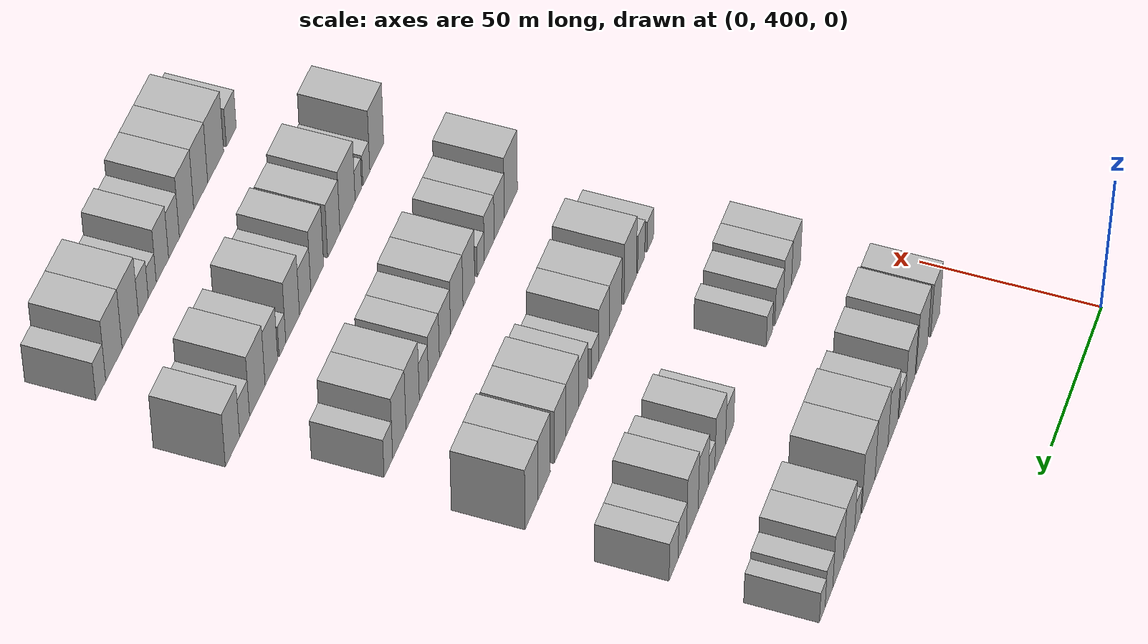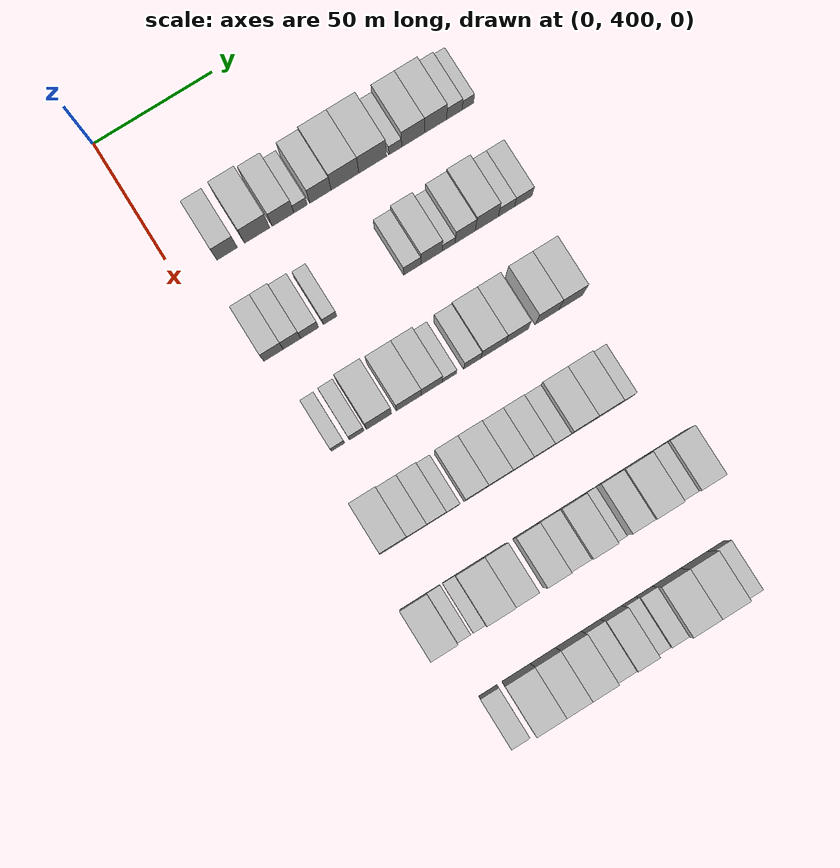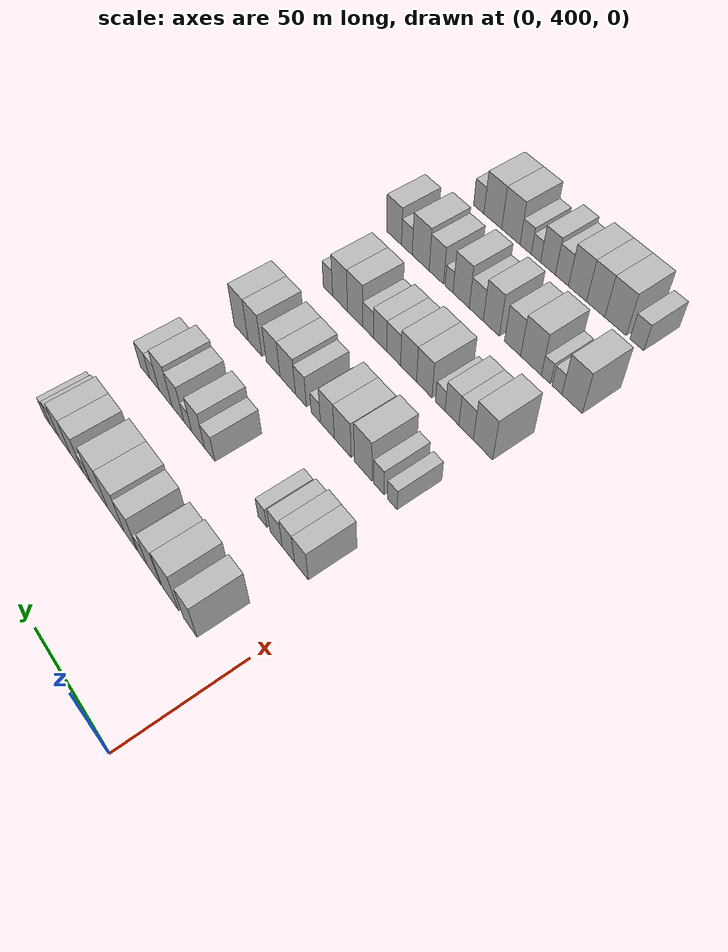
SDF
<sdf version="1.6">
 <world name="default">
  <model name="building_110">
   <static>1</static>
   <pose>50.0000 420.1055 0 0.000000 0.000000 0.000000</pose>
   <link name="link">
    <pose>0 0 10.50 0 0 0</pose>
    <collision name="collision"><geometry><box><size>20.0000 8.5276 21.0000</size></box></geometry></collision>
    <visual name="visual">
     <cast_shadows>0</cast_shadows>
     <geometry><box><size>20.0000 8.5276 21.0000</size></box></geometry>
     <material>
      <script>
       <uri>model://HANNAS_wall/materials/scripts</uri>
       <uri>model://HANNAS_wall/materials/textures</uri>
       <name>vrc/HANNAS_wall</name>
      </script>
     </material>
    </visual>
   </link>
  </model>
  <model name="building_111">
   <static>1</static>
   <pose>50.0000 432.6620 0 0.000000 0.000000 0.000000</pose>
   <link name="link">
    <pose>0 0 12.00 0 0 0</pose>
    <collision name="collision"><geometry><box><size>20.0000 10.5853 24.0000</size></box></geometry></collision>
    <visual name="visual">
     <cast_shadows>0</cast_shadows>
     <geometry><box><size>20.0000 10.5853 24.0000</size></box></geometry>
     <material>
      <script>
       <uri>model://HANNAS_wall/materials/scripts</uri>
       <uri>model://HANNAS_wall/materials/textures</uri>
       <name>vrc/HANNAS_wall</name>
      </script>
     </material>
    </visual>
   </link>
  </model>
  <model name="building_112">
   <static>1</static>
   <pose>50.0000 443.5451 0 0.000000 0.000000 0.000000</pose>
   <link name="link">
    <pose>0 0 10.50 0 0 0</pose>
    <collision name="collision"><geometry><box><size>20.0000 9.1810 21.0000</size></box></geometry></collision>
    <visual name="visual">
     <cast_shadows>0</cast_shadows>
     <geometry><box><size>20.0000 9.1810 21.0000</size></box></geometry>
     <material>
      <script>
       <uri>model://HANNAS_wall/materials/scripts</uri>
       <uri>model://HANNAS_wall/materials/textures</uri>
       <name>vrc/HANNAS_wall</name>
      </script>
     </material>
    </visual>
   </link>
  </model>
  <model name="building_113">
   <static>1</static>
   <pose>50.0000 450.9675 0 0.000000 0.000000 0.000000</pose>
   <link name="link">
    <pose>0 0 6.00 0 0 0</pose>
    <collision name="collision"><geometry><box><size>20.0000 5.6637 12.0000</size></box></geometry></collision>
    <visual name="visual">
     <cast_shadows>0</cast_shadows>
     <geometry><box><size>20.0000 5.6637 12.0000</size></box></geometry>
     <material>
      <script>
       <uri>model://HANNAS_wall/materials/scripts</uri>
       <uri>model://HANNAS_wall/materials/textures</uri>
       <name>vrc/HANNAS_wall</name>
      </script>
     </material>
    </visual>
   </link>
  </model>
  <model name="building_114">
   <static>1</static>
   <pose>50.0000 459.3117 0 0.000000 0.000000 0.000000</pose>
   <link name="link">
    <pose>0 0 10.50 0 0 0</pose>
    <collision name="collision"><geometry><box><size>20.0000 9.0249 21.0000</size></box></geometry></collision>
    <visual name="visual">
     <cast_shadows>0</cast_shadows>
     <geometry><box><size>20.0000 9.0249 21.0000</size></box></geometry>
     <material>
      <script>
       <uri>model://HANNAS_wall/materials/scripts</uri>
       <uri>model://HANNAS_wall/materials/textures</uri>
       <name>vrc/HANNAS_wall</name>
      </script>
     </material>
    </visual>
   </link>
  </model>
  <model name="building_115">
   <static>1</static>
   <pose>50.0000 469.6719 0 0.000000 0.000000 0.000000</pose>
   <link name="link">
    <pose>0 0 12.00 0 0 0</pose>
    <collision name="collision"><geometry><box><size>20.0000 11.6955 24.0000</size></box></geometry></collision>
    <visual name="visual">
     <cast_shadows>0</cast_shadows>
     <geometry><box><size>20.0000 11.6955 24.0000</size></box></geometry>
     <material>
      <script>
       <uri>model://HANNAS_wall/materials/scripts</uri>
       <uri>model://HANNAS_wall/materials/textures</uri>
       <name>vrc/HANNAS_wall</name>
      </script>
     </material>
    </visual>
   </link>
  </model>
  <model name="building_116">
   <static>1</static>
   <pose>50.0000 481.3776 0 0.000000 0.000000 0.000000</pose>
   <link name="link">
    <pose>0 0 12.00 0 0 0</pose>
    <collision name="collision"><geometry><box><size>20.0000 11.7159 24.0000</size></box></geometry></collision>
    <visual name="visual">
     <cast_shadows>0</cast_shadows>
     <geometry><box><size>20.0000 11.7159 24.0000</size></box></geometry>
     <material>
      <script>
       <uri>model://HANNAS_wall/materials/scripts</uri>
       <uri>model://HANNAS_wall/materials/textures</uri>
       <name>vrc/HANNAS_wall</name>
      </script>
     </material>
    </visual>
   </link>
  </model>
  <model name="building_117">
   <static>1</static>
   <pose>50.0000 490.9326 0 0.000000 0.000000 0.000000</pose>
   <link name="link">
    <pose>0 0 6.00 0 0 0</pose>
    <collision name="collision"><geometry><box><size>20.0000 5.3941 12.0000</size></box></geometry></collision>
    <visual name="visual">
     <cast_shadows>0</cast_shadows>
     <geometry><box><size>20.0000 5.3941 12.0000</size></box></geometry>
     <material>
      <script>
       <uri>model://HANNAS_wall/materials/scripts</uri>
       <uri>model://HANNAS_wall/materials/textures</uri>
       <name>vrc/HANNAS_wall</name>
      </script>
     </material>
    </visual>
   </link>
  </model>
  <model name="building_118">
   <static>1</static>
   <pose>50.0000 498.4471 0 0.000000 0.000000 0.000000</pose>
   <link name="link">
    <pose>0 0 10.50 0 0 0</pose>
    <collision name="collision"><geometry><box><size>20.0000 9.6350 21.0000</size></box></geometry></collision>
    <visual name="visual">
     <cast_shadows>0</cast_shadows>
     <geometry><box><size>20.0000 9.6350 21.0000</size></box></geometry>
     <material>
      <script>
       <uri>model://HANNAS_wall/materials/scripts</uri>
       <uri>model://HANNAS_wall/materials/textures</uri>
       <name>vrc/HANNAS_wall</name>
      </script>
     </material>
    </visual>
   </link>
  </model>
  <model name="building_119">
   <static>1</static>
   <pose>50.0000 507.9901 0 0.000000 0.000000 0.000000</pose>
   <link name="link">
    <pose>0 0 10.50 0 0 0</pose>
    <collision name="collision"><geometry><box><size>20.0000 9.4509 21.0000</size></box></geometry></collision>
    <visual name="visual">
     <cast_shadows>0</cast_shadows>
     <geometry><box><size>20.0000 9.4509 21.0000</size></box></geometry>
     <material>
      <script>
       <uri>model://HANNAS_wall/materials/scripts</uri>
       <uri>model://HANNAS_wall/materials/textures</uri>
       <name>vrc/HANNAS_wall</name>
      </script>
     </material>
    </visual>
   </link>
  </model>
  <model name="building_120">
   <static>1</static>
   <pose>50.0000 516.0234 0 0.000000 0.000000 0.000000</pose>
   <link name="link">
    <pose>0 0 7.50 0 0 0</pose>
    <collision name="collision"><geometry><box><size>20.0000 6.6158 15.0000</size></box></geometry></collision>
    <visual name="visual">
     <cast_shadows>0</cast_shadows>
     <geometry><box><size>20.0000 6.6158 15.0000</size></box></geometry>
     <material>
      <script>
       <uri>model://HANNAS_wall/materials/scripts</uri>
       <uri>model://HANNAS_wall/materials/textures</uri>
       <name>vrc/HANNAS_wall</name>
      </script>
     </material>
    </visual>
   </link>
  </model>
  <model name="building_121">
   <static>1</static>
   <pose>50.0000 521.7863 0 0.000000 0.000000 0.000000</pose>
   <link name="link">
    <pose>0 0 6.00 0 0 0</pose>
    <collision name="collision"><geometry><box><size>20.0000 4.9099 12.0000</size></box></geometry></collision>
    <visual name="visual">
     <cast_shadows>0</cast_shadows>
     <geometry><box><size>20.0000 4.9099 12.0000</size></box></geometry>
     <material>
      <script>
       <uri>model://HANNAS_wall/materials/scripts</uri>
       <uri>model://HANNAS_wall/materials/textures</uri>
       <name>vrc/HANNAS_wall</name>
      </script>
     </material>
    </visual>
   </link>
  </model>
  <model name="building_249">
   <static>1</static>
   <pose>90.0000 415.0874 0 0.000000 0.000000 0.000000</pose>
   <link name="link">
    <pose>0 0 9.00 0 0 0</pose>
    <collision name="collision"><geometry><box><size>20.0000 8.1011 18.0000</size></box></geometry></collision>
    <visual name="visual">
     <cast_shadows>0</cast_shadows>
     <geometry><box><size>20.0000 8.1011 18.0000</size></box></geometry>
     <material>
      <script>
       <uri>model://HANNAS_wall/materials/scripts</uri>
       <uri>model://HANNAS_wall/materials/textures</uri>
       <name>vrc/HANNAS_wall</name>
      </script>
     </material>
    </visual>
   </link>
  </model>
  <model name="building_250">
   <static>1</static>
   <pose>90.0000 422.7804 0 0.000000 0.000000 0.000000</pose>
   <link name="link">
    <pose>0 0 9.00 0 0 0</pose>
    <collision name="collision"><geometry><box><size>20.0000 7.2850 18.0000</size></box></geometry></collision>
    <visual name="visual">
     <cast_shadows>0</cast_shadows>
     <geometry><box><size>20.0000 7.2850 18.0000</size></box></geometry>
     <material>
      <script>
       <uri>model://HANNAS_wall/materials/scripts</uri>
       <uri>model://HANNAS_wall/materials/textures</uri>
       <name>vrc/HANNAS_wall</name>
      </script>
     </material>
    </visual>
   </link>
  </model>
  <model name="building_251">
   <static>1</static>
   <pose>90.0000 430.1629 0 0.000000 0.000000 0.000000</pose>
   <link name="link">
    <pose>0 0 7.50 0 0 0</pose>
    <collision name="collision"><geometry><box><size>20.0000 7.4800 15.0000</size></box></geometry></collision>
    <visual name="visual">
     <cast_shadows>0</cast_shadows>
     <geometry><box><size>20.0000 7.4800 15.0000</size></box></geometry>
     <material>
      <script>
       <uri>model://HANNAS_wall/materials/scripts</uri>
       <uri>model://HANNAS_wall/materials/textures</uri>
       <name>vrc/HANNAS_wall</name>
      </script>
     </material>
    </visual>
   </link>
  </model>
  <model name="building_252">
   <static>1</static>
   <pose>90.0000 438.6901 0 0.000000 0.000000 0.000000</pose>
   <link name="link">
    <pose>0 0 6.00 0 0 0</pose>
    <collision name="collision"><geometry><box><size>20.0000 5.5744 12.0000</size></box></geometry></collision>
    <visual name="visual">
     <cast_shadows>0</cast_shadows>
     <geometry><box><size>20.0000 5.5744 12.0000</size></box></geometry>
     <material>
      <script>
       <uri>model://HANNAS_wall/materials/scripts</uri>
       <uri>model://HANNAS_wall/materials/textures</uri>
       <name>vrc/HANNAS_wall</name>
      </script>
     </material>
    </visual>
   </link>
  </model>
  <model name="building_253">
   <static>1</static>
   <pose>90.0000 473.1619 0 0.000000 0.000000 0.000000</pose>
   <link name="link">
    <pose>0 0 7.50 0 0 0</pose>
    <collision name="collision"><geometry><box><size>20.0000 7.1231 15.0000</size></box></geometry></collision>
    <visual name="visual">
     <cast_shadows>0</cast_shadows>
     <geometry><box><size>20.0000 7.1231 15.0000</size></box></geometry>
     <material>
      <script>
       <uri>model://HANNAS_wall/materials/scripts</uri>
       <uri>model://HANNAS_wall/materials/textures</uri>
       <name>vrc/HANNAS_wall</name>
      </script>
     </material>
    </visual>
   </link>
  </model>
  <model name="building_254">
   <static>1</static>
   <pose>90.0000 481.2542 0 0.000000 0.000000 0.000000</pose>
   <link name="link">
    <pose>0 0 10.50 0 0 0</pose>
    <collision name="collision"><geometry><box><size>20.0000 9.0615 21.0000</size></box></geometry></collision>
    <visual name="visual">
     <cast_shadows>0</cast_shadows>
     <geometry><box><size>20.0000 9.0615 21.0000</size></box></geometry>
     <material>
      <script>
       <uri>model://HANNAS_wall/materials/scripts</uri>
       <uri>model://HANNAS_wall/materials/textures</uri>
       <name>vrc/HANNAS_wall</name>
      </script>
     </material>
    </visual>
   </link>
  </model>
  <model name="building_255">
   <static>1</static>
   <pose>90.0000 488.5045 0 0.000000 0.000000 0.000000</pose>
   <link name="link">
    <pose>0 0 6.00 0 0 0</pose>
    <collision name="collision"><geometry><box><size>20.0000 5.4392 12.0000</size></box></geometry></collision>
    <visual name="visual">
     <cast_shadows>0</cast_shadows>
     <geometry><box><size>20.0000 5.4392 12.0000</size></box></geometry>
     <material>
      <script>
       <uri>model://HANNAS_wall/materials/scripts</uri>
       <uri>model://HANNAS_wall/materials/textures</uri>
       <name>vrc/HANNAS_wall</name>
      </script>
     </material>
    </visual>
   </link>
  </model>
  <model name="building_256">
   <static>1</static>
   <pose>90.0000 495.5028 0 0.000000 0.000000 0.000000</pose>
   <link name="link">
    <pose>0 0 10.50 0 0 0</pose>
    <collision name="collision"><geometry><box><size>20.0000 8.5574 21.0000</size></box></geometry></collision>
    <visual name="visual">
     <cast_shadows>0</cast_shadows>
     <geometry><box><size>20.0000 8.5574 21.0000</size></box></geometry>
     <material>
      <script>
       <uri>model://HANNAS_wall/materials/scripts</uri>
       <uri>model://HANNAS_wall/materials/textures</uri>
       <name>vrc/HANNAS_wall</name>
      </script>
     </material>
    </visual>
   </link>
  </model>
  <model name="building_257">
   <static>1</static>
   <pose>90.0000 504.6371 0 0.000000 0.000000 0.000000</pose>
   <link name="link">
    <pose>0 0 12.00 0 0 0</pose>
    <collision name="collision"><geometry><box><size>20.0000 9.7112 24.0000</size></box></geometry></collision>
    <visual name="visual">
     <cast_shadows>0</cast_shadows>
     <geometry><box><size>20.0000 9.7112 24.0000</size></box></geometry>
     <material>
      <script>
       <uri>model://HANNAS_wall/materials/scripts</uri>
       <uri>model://HANNAS_wall/materials/textures</uri>
       <name>vrc/HANNAS_wall</name>
      </script>
     </material>
    </visual>
   </link>
  </model>
  <model name="building_258">
   <static>1</static>
   <pose>90.0000 512.9459 0 0.000000 0.000000 0.000000</pose>
   <link name="link">
    <pose>0 0 7.50 0 0 0</pose>
    <collision name="collision"><geometry><box><size>20.0000 6.9064 15.0000</size></box></geometry></collision>
    <visual name="visual">
     <cast_shadows>0</cast_shadows>
     <geometry><box><size>20.0000 6.9064 15.0000</size></box></geometry>
     <material>
      <script>
       <uri>model://HANNAS_wall/materials/scripts</uri>
       <uri>model://HANNAS_wall/materials/textures</uri>
       <name>vrc/HANNAS_wall</name>
      </script>
     </material>
    </visual>
   </link>
  </model>
  <model name="building_259">
   <static>1</static>
   <pose>90.0000 520.1080 0 0.000000 0.000000 0.000000</pose>
   <link name="link">
    <pose>0 0 7.50 0 0 0</pose>
    <collision name="collision"><geometry><box><size>20.0000 7.4178 15.0000</size></box></geometry></collision>
    <visual name="visual">
     <cast_shadows>0</cast_shadows>
     <geometry><box><size>20.0000 7.4178 15.0000</size></box></geometry>
     <material>
      <script>
       <uri>model://HANNAS_wall/materials/scripts</uri>
       <uri>model://HANNAS_wall/materials/textures</uri>
       <name>vrc/HANNAS_wall</name>
      </script>
     </material>
    </visual>
   </link>
  </model>
  <model name="building_390">
   <static>1</static>
   <pose>130.0000 417.3419 0 0.000000 0.000000 0.000000</pose>
   <link name="link">
    <pose>0 0 6.00 0 0 0</pose>
    <collision name="collision"><geometry><box><size>20.0000 5.5188 12.0000</size></box></geometry></collision>
    <visual name="visual">
     <cast_shadows>0</cast_shadows>
     <geometry><box><size>20.0000 5.5188 12.0000</size></box></geometry>
     <material>
      <script>
       <uri>model://HANNAS_wall/materials/scripts</uri>
       <uri>model://HANNAS_wall/materials/textures</uri>
       <name>vrc/HANNAS_wall</name>
      </script>
     </material>
    </visual>
   </link>
  </model>
  <model name="building_391">
   <static>1</static>
   <pose>130.0000 425.1284 0 0.000000 0.000000 0.000000</pose>
   <link name="link">
    <pose>0 0 7.50 0 0 0</pose>
    <collision name="collision"><geometry><box><size>20.0000 6.0542 15.0000</size></box></geometry></collision>
    <visual name="visual">
     <cast_shadows>0</cast_shadows>
     <geometry><box><size>20.0000 6.0542 15.0000</size></box></geometry>
     <material>
      <script>
       <uri>model://HANNAS_wall/materials/scripts</uri>
       <uri>model://HANNAS_wall/materials/textures</uri>
       <name>vrc/HANNAS_wall</name>
      </script>
     </material>
    </visual>
   </link>
  </model>
  <model name="building_392">
   <static>1</static>
   <pose>130.0000 434.3742 0 0.000000 0.000000 0.000000</pose>
   <link name="link">
    <pose>0 0 12.00 0 0 0</pose>
    <collision name="collision"><geometry><box><size>20.0000 10.4375 24.0000</size></box></geometry></collision>
    <visual name="visual">
     <cast_shadows>0</cast_shadows>
     <geometry><box><size>20.0000 10.4375 24.0000</size></box></geometry>
     <material>
      <script>
       <uri>model://HANNAS_wall/materials/scripts</uri>
       <uri>model://HANNAS_wall/materials/textures</uri>
       <name>vrc/HANNAS_wall</name>
      </script>
     </material>
    </visual>
   </link>
  </model>
  <model name="building_393">
   <static>1</static>
   <pose>130.0000 446.7995 0 0.000000 0.000000 0.000000</pose>
   <link name="link">
    <pose>0 0 10.50 0 0 0</pose>
    <collision name="collision"><geometry><box><size>20.0000 10.4129 21.0000</size></box></geometry></collision>
    <visual name="visual">
     <cast_shadows>0</cast_shadows>
     <geometry><box><size>20.0000 10.4129 21.0000</size></box></geometry>
     <material>
      <script>
       <uri>model://HANNAS_wall/materials/scripts</uri>
       <uri>model://HANNAS_wall/materials/textures</uri>
       <name>vrc/HANNAS_wall</name>
      </script>
     </material>
    </visual>
   </link>
  </model>
  <model name="building_394">
   <static>1</static>
   <pose>130.0000 456.3729 0 0.000000 0.000000 0.000000</pose>
   <link name="link">
    <pose>0 0 10.50 0 0 0</pose>
    <collision name="collision"><geometry><box><size>20.0000 8.7340 21.0000</size></box></geometry></collision>
    <visual name="visual">
     <cast_shadows>0</cast_shadows>
     <geometry><box><size>20.0000 8.7340 21.0000</size></box></geometry>
     <material>
      <script>
       <uri>model://HANNAS_wall/materials/scripts</uri>
       <uri>model://HANNAS_wall/materials/textures</uri>
       <name>vrc/HANNAS_wall</name>
      </script>
     </material>
    </visual>
   </link>
  </model>
  <model name="building_395">
   <static>1</static>
   <pose>130.0000 463.7271 0 0.000000 0.000000 0.000000</pose>
   <link name="link">
    <pose>0 0 6.00 0 0 0</pose>
    <collision name="collision"><geometry><box><size>20.0000 5.9744 12.0000</size></box></geometry></collision>
    <visual name="visual">
     <cast_shadows>0</cast_shadows>
     <geometry><box><size>20.0000 5.9744 12.0000</size></box></geometry>
     <material>
      <script>
       <uri>model://HANNAS_wall/materials/scripts</uri>
       <uri>model://HANNAS_wall/materials/textures</uri>
       <name>vrc/HANNAS_wall</name>
      </script>
     </material>
    </visual>
   </link>
  </model>
  <model name="building_396">
   <static>1</static>
   <pose>130.0000 473.3313 0 0.000000 0.000000 0.000000</pose>
   <link name="link">
    <pose>0 0 9.00 0 0 0</pose>
    <collision name="collision"><geometry><box><size>20.0000 7.2339 18.0000</size></box></geometry></collision>
    <visual name="visual">
     <cast_shadows>0</cast_shadows>
     <geometry><box><size>20.0000 7.2339 18.0000</size></box></geometry>
     <material>
      <script>
       <uri>model://HANNAS_wall/materials/scripts</uri>
       <uri>model://HANNAS_wall/materials/textures</uri>
       <name>vrc/HANNAS_wall</name>
      </script>
     </material>
    </visual>
   </link>
  </model>
  <model name="building_397">
   <static>1</static>
   <pose>130.0000 482.1320 0 0.000000 0.000000 0.000000</pose>
   <link name="link">
    <pose>0 0 10.50 0 0 0</pose>
    <collision name="collision"><geometry><box><size>20.0000 10.3675 21.0000</size></box></geometry></collision>
    <visual name="visual">
     <cast_shadows>0</cast_shadows>
     <geometry><box><size>20.0000 10.3675 21.0000</size></box></geometry>
     <material>
      <script>
       <uri>model://HANNAS_wall/materials/scripts</uri>
       <uri>model://HANNAS_wall/materials/textures</uri>
       <name>vrc/HANNAS_wall</name>
      </script>
     </material>
    </visual>
   </link>
  </model>
  <model name="building_398">
   <static>1</static>
   <pose>130.0000 492.0915 0 0.000000 0.000000 0.000000</pose>
   <link name="link">
    <pose>0 0 10.50 0 0 0</pose>
    <collision name="collision"><geometry><box><size>20.0000 9.5514 21.0000</size></box></geometry></collision>
    <visual name="visual">
     <cast_shadows>0</cast_shadows>
     <geometry><box><size>20.0000 9.5514 21.0000</size></box></geometry>
     <material>
      <script>
       <uri>model://HANNAS_wall/materials/scripts</uri>
       <uri>model://HANNAS_wall/materials/textures</uri>
       <name>vrc/HANNAS_wall</name>
      </script>
     </material>
    </visual>
   </link>
  </model>
  <model name="building_399">
   <static>1</static>
   <pose>130.0000 504.7904 0 0.000000 0.000000 0.000000</pose>
   <link name="link">
    <pose>0 0 12.00 0 0 0</pose>
    <collision name="collision"><geometry><box><size>20.0000 9.8464 24.0000</size></box></geometry></collision>
    <visual name="visual">
     <cast_shadows>0</cast_shadows>
     <geometry><box><size>20.0000 9.8464 24.0000</size></box></geometry>
     <material>
      <script>
       <uri>model://HANNAS_wall/materials/scripts</uri>
       <uri>model://HANNAS_wall/materials/textures</uri>
       <name>vrc/HANNAS_wall</name>
      </script>
     </material>
    </visual>
   </link>
  </model>
  <model name="building_400">
   <static>1</static>
   <pose>130.0000 514.7852 0 0.000000 0.000000 0.000000</pose>
   <link name="link">
    <pose>0 0 12.00 0 0 0</pose>
    <collision name="collision"><geometry><box><size>20.0000 10.1431 24.0000</size></box></geometry></collision>
    <visual name="visual">
     <cast_shadows>0</cast_shadows>
     <geometry><box><size>20.0000 10.1431 24.0000</size></box></geometry>
     <material>
      <script>
       <uri>model://HANNAS_wall/materials/scripts</uri>
       <uri>model://HANNAS_wall/materials/textures</uri>
       <name>vrc/HANNAS_wall</name>
      </script>
     </material>
    </visual>
   </link>
  </model>
  <model name="building_531">
   <static>1</static>
   <pose>170.0000 415.6485 0 0.000000 0.000000 0.000000</pose>
   <link name="link">
    <pose>0 0 12.00 0 0 0</pose>
    <collision name="collision"><geometry><box><size>20.0000 10.7504 24.0000</size></box></geometry></collision>
    <visual name="visual">
     <cast_shadows>0</cast_shadows>
     <geometry><box><size>20.0000 10.7504 24.0000</size></box></geometry>
     <material>
      <script>
       <uri>model://HANNAS_wall/materials/scripts</uri>
       <uri>model://HANNAS_wall/materials/textures</uri>
       <name>vrc/HANNAS_wall</name>
      </script>
     </material>
    </visual>
   </link>
  </model>
  <model name="building_532">
   <static>1</static>
   <pose>170.0000 425.1238 0 0.000000 0.000000 0.000000</pose>
   <link name="link">
    <pose>0 0 9.00 0 0 0</pose>
    <collision name="collision"><geometry><box><size>20.0000 8.2002 18.0000</size></box></geometry></collision>
    <visual name="visual">
     <cast_shadows>0</cast_shadows>
     <geometry><box><size>20.0000 8.2002 18.0000</size></box></geometry>
     <material>
      <script>
       <uri>model://HANNAS_wall/materials/scripts</uri>
       <uri>model://HANNAS_wall/materials/textures</uri>
       <name>vrc/HANNAS_wall</name>
      </script>
     </material>
    </visual>
   </link>
  </model>
  <model name="building_533">
   <static>1</static>
   <pose>170.0000 433.2291 0 0.000000 0.000000 0.000000</pose>
   <link name="link">
    <pose>0 0 9.00 0 0 0</pose>
    <collision name="collision"><geometry><box><size>20.0000 8.0103 18.0000</size></box></geometry></collision>
    <visual name="visual">
     <cast_shadows>0</cast_shadows>
     <geometry><box><size>20.0000 8.0103 18.0000</size></box></geometry>
     <material>
      <script>
       <uri>model://HANNAS_wall/materials/scripts</uri>
       <uri>model://HANNAS_wall/materials/textures</uri>
       <name>vrc/HANNAS_wall</name>
      </script>
     </material>
    </visual>
   </link>
  </model>
  <model name="building_534">
   <static>1</static>
   <pose>170.0000 440.0709 0 0.000000 0.000000 0.000000</pose>
   <link name="link">
    <pose>0 0 6.00 0 0 0</pose>
    <collision name="collision"><geometry><box><size>20.0000 5.6733 12.0000</size></box></geometry></collision>
    <visual name="visual">
     <cast_shadows>0</cast_shadows>
     <geometry><box><size>20.0000 5.6733 12.0000</size></box></geometry>
     <material>
      <script>
       <uri>model://HANNAS_wall/materials/scripts</uri>
       <uri>model://HANNAS_wall/materials/textures</uri>
       <name>vrc/HANNAS_wall</name>
      </script>
     </material>
    </visual>
   </link>
  </model>
  <model name="building_535">
   <static>1</static>
   <pose>170.0000 449.5840 0 0.000000 0.000000 0.000000</pose>
   <link name="link">
    <pose>0 0 10.50 0 0 0</pose>
    <collision name="collision"><geometry><box><size>20.0000 9.3530 21.0000</size></box></geometry></collision>
    <visual name="visual">
     <cast_shadows>0</cast_shadows>
     <geometry><box><size>20.0000 9.3530 21.0000</size></box></geometry>
     <material>
      <script>
       <uri>model://HANNAS_wall/materials/scripts</uri>
       <uri>model://HANNAS_wall/materials/textures</uri>
       <name>vrc/HANNAS_wall</name>
      </script>
     </material>
    </visual>
   </link>
  </model>
  <model name="building_536">
   <static>1</static>
   <pose>170.0000 459.1764 0 0.000000 0.000000 0.000000</pose>
   <link name="link">
    <pose>0 0 10.50 0 0 0</pose>
    <collision name="collision"><geometry><box><size>20.0000 9.8319 21.0000</size></box></geometry></collision>
    <visual name="visual">
     <cast_shadows>0</cast_shadows>
     <geometry><box><size>20.0000 9.8319 21.0000</size></box></geometry>
     <material>
      <script>
       <uri>model://HANNAS_wall/materials/scripts</uri>
       <uri>model://HANNAS_wall/materials/textures</uri>
       <name>vrc/HANNAS_wall</name>
      </script>
     </material>
    </visual>
   </link>
  </model>
  <model name="building_537">
   <static>1</static>
   <pose>170.0000 468.4742 0 0.000000 0.000000 0.000000</pose>
   <link name="link">
    <pose>0 0 9.00 0 0 0</pose>
    <collision name="collision"><geometry><box><size>20.0000 8.7637 18.0000</size></box></geometry></collision>
    <visual name="visual">
     <cast_shadows>0</cast_shadows>
     <geometry><box><size>20.0000 8.7637 18.0000</size></box></geometry>
     <material>
      <script>
       <uri>model://HANNAS_wall/materials/scripts</uri>
       <uri>model://HANNAS_wall/materials/textures</uri>
       <name>vrc/HANNAS_wall</name>
      </script>
     </material>
    </visual>
   </link>
  </model>
  <model name="building_538">
   <static>1</static>
   <pose>170.0000 477.1355 0 0.000000 0.000000 0.000000</pose>
   <link name="link">
    <pose>0 0 9.00 0 0 0</pose>
    <collision name="collision"><geometry><box><size>20.0000 8.5589 18.0000</size></box></geometry></collision>
    <visual name="visual">
     <cast_shadows>0</cast_shadows>
     <geometry><box><size>20.0000 8.5589 18.0000</size></box></geometry>
     <material>
      <script>
       <uri>model://HANNAS_wall/materials/scripts</uri>
       <uri>model://HANNAS_wall/materials/textures</uri>
       <name>vrc/HANNAS_wall</name>
      </script>
     </material>
    </visual>
   </link>
  </model>
  <model name="building_539">
   <static>1</static>
   <pose>170.0000 484.9039 0 0.000000 0.000000 0.000000</pose>
   <link name="link">
    <pose>0 0 7.50 0 0 0</pose>
    <collision name="collision"><geometry><box><size>20.0000 6.9778 15.0000</size></box></geometry></collision>
    <visual name="visual">
     <cast_shadows>0</cast_shadows>
     <geometry><box><size>20.0000 6.9778 15.0000</size></box></geometry>
     <material>
      <script>
       <uri>model://HANNAS_wall/materials/scripts</uri>
       <uri>model://HANNAS_wall/materials/textures</uri>
       <name>vrc/HANNAS_wall</name>
      </script>
     </material>
    </visual>
   </link>
  </model>
  <model name="building_540">
   <static>1</static>
   <pose>170.0000 493.5011 0 0.000000 0.000000 0.000000</pose>
   <link name="link">
    <pose>0 0 12.00 0 0 0</pose>
    <collision name="collision"><geometry><box><size>20.0000 10.2166 24.0000</size></box></geometry></collision>
    <visual name="visual">
     <cast_shadows>0</cast_shadows>
     <geometry><box><size>20.0000 10.2166 24.0000</size></box></geometry>
     <material>
      <script>
       <uri>model://HANNAS_wall/materials/scripts</uri>
       <uri>model://HANNAS_wall/materials/textures</uri>
       <name>vrc/HANNAS_wall</name>
      </script>
     </material>
    </visual>
   </link>
  </model>
  <model name="building_541">
   <static>1</static>
   <pose>170.0000 503.7042 0 0.000000 0.000000 0.000000</pose>
   <link name="link">
    <pose>0 0 12.00 0 0 0</pose>
    <collision name="collision"><geometry><box><size>20.0000 10.1897 24.0000</size></box></geometry></collision>
    <visual name="visual">
     <cast_shadows>0</cast_shadows>
     <geometry><box><size>20.0000 10.1897 24.0000</size></box></geometry>
     <material>
      <script>
       <uri>model://HANNAS_wall/materials/scripts</uri>
       <uri>model://HANNAS_wall/materials/textures</uri>
       <name>vrc/HANNAS_wall</name>
      </script>
     </material>
    </visual>
   </link>
  </model>
  <model name="building_542">
   <static>1</static>
   <pose>170.0000 512.0456 0 0.000000 0.000000 0.000000</pose>
   <link name="link">
    <pose>0 0 7.50 0 0 0</pose>
    <collision name="collision"><geometry><box><size>20.0000 6.4930 15.0000</size></box></geometry></collision>
    <visual name="visual">
     <cast_shadows>0</cast_shadows>
     <geometry><box><size>20.0000 6.4930 15.0000</size></box></geometry>
     <material>
      <script>
       <uri>model://HANNAS_wall/materials/scripts</uri>
       <uri>model://HANNAS_wall/materials/textures</uri>
       <name>vrc/HANNAS_wall</name>
      </script>
     </material>
    </visual>
   </link>
  </model>
  <model name="building_669">
   <static>1</static>
   <pose>210.0000 411.2536 0 0.000000 0.000000 0.000000</pose>
   <link name="link">
    <pose>0 0 12.00 0 0 0</pose>
    <collision name="collision"><geometry><box><size>20.0000 10.9149 24.0000</size></box></geometry></collision>
    <visual name="visual">
     <cast_shadows>0</cast_shadows>
     <geometry><box><size>20.0000 10.9149 24.0000</size></box></geometry>
     <material>
      <script>
       <uri>model://HANNAS_wall/materials/scripts</uri>
       <uri>model://HANNAS_wall/materials/textures</uri>
       <name>vrc/HANNAS_wall</name>
      </script>
     </material>
    </visual>
   </link>
  </model>
  <model name="building_670">
   <static>1</static>
   <pose>210.0000 419.4178 0 0.000000 0.000000 0.000000</pose>
   <link name="link">
    <pose>0 0 6.00 0 0 0</pose>
    <collision name="collision"><geometry><box><size>20.0000 5.4133 12.0000</size></box></geometry></collision>
    <visual name="visual">
     <cast_shadows>0</cast_shadows>
     <geometry><box><size>20.0000 5.4133 12.0000</size></box></geometry>
     <material>
      <script>
       <uri>model://HANNAS_wall/materials/scripts</uri>
       <uri>model://HANNAS_wall/materials/textures</uri>
       <name>vrc/HANNAS_wall</name>
      </script>
     </material>
    </visual>
   </link>
  </model>
  <model name="building_671">
   <static>1</static>
   <pose>210.0000 425.6525 0 0.000000 0.000000 0.000000</pose>
   <link name="link">
    <pose>0 0 6.00 0 0 0</pose>
    <collision name="collision"><geometry><box><size>20.0000 5.0561 12.0000</size></box></geometry></collision>
    <visual name="visual">
     <cast_shadows>0</cast_shadows>
     <geometry><box><size>20.0000 5.0561 12.0000</size></box></geometry>
     <material>
      <script>
       <uri>model://HANNAS_wall/materials/scripts</uri>
       <uri>model://HANNAS_wall/materials/textures</uri>
       <name>vrc/HANNAS_wall</name>
      </script>
     </material>
    </visual>
   </link>
  </model>
  <model name="building_672">
   <static>1</static>
   <pose>210.0000 434.0646 0 0.000000 0.000000 0.000000</pose>
   <link name="link">
    <pose>0 0 12.00 0 0 0</pose>
    <collision name="collision"><geometry><box><size>20.0000 11.7682 24.0000</size></box></geometry></collision>
    <visual name="visual">
     <cast_shadows>0</cast_shadows>
     <geometry><box><size>20.0000 11.7682 24.0000</size></box></geometry>
     <material>
      <script>
       <uri>model://HANNAS_wall/materials/scripts</uri>
       <uri>model://HANNAS_wall/materials/textures</uri>
       <name>vrc/HANNAS_wall</name>
      </script>
     </material>
    </visual>
   </link>
  </model>
  <model name="building_673">
   <static>1</static>
   <pose>210.0000 444.6850 0 0.000000 0.000000 0.000000</pose>
   <link name="link">
    <pose>0 0 10.50 0 0 0</pose>
    <collision name="collision"><geometry><box><size>20.0000 9.4727 21.0000</size></box></geometry></collision>
    <visual name="visual">
     <cast_shadows>0</cast_shadows>
     <geometry><box><size>20.0000 9.4727 21.0000</size></box></geometry>
     <material>
      <script>
       <uri>model://HANNAS_wall/materials/scripts</uri>
       <uri>model://HANNAS_wall/materials/textures</uri>
       <name>vrc/HANNAS_wall</name>
      </script>
     </material>
    </visual>
   </link>
  </model>
  <model name="building_674">
   <static>1</static>
   <pose>210.0000 457.2834 0 0.000000 0.000000 0.000000</pose>
   <link name="link">
    <pose>0 0 12.00 0 0 0</pose>
    <collision name="collision"><geometry><box><size>20.0000 9.7240 24.0000</size></box></geometry></collision>
    <visual name="visual">
     <cast_shadows>0</cast_shadows>
     <geometry><box><size>20.0000 9.7240 24.0000</size></box></geometry>
     <material>
      <script>
       <uri>model://HANNAS_wall/materials/scripts</uri>
       <uri>model://HANNAS_wall/materials/textures</uri>
       <name>vrc/HANNAS_wall</name>
      </script>
     </material>
    </visual>
   </link>
  </model>
  <model name="building_675">
   <static>1</static>
   <pose>210.0000 466.4382 0 0.000000 0.000000 0.000000</pose>
   <link name="link">
    <pose>0 0 9.00 0 0 0</pose>
    <collision name="collision"><geometry><box><size>20.0000 8.5855 18.0000</size></box></geometry></collision>
    <visual name="visual">
     <cast_shadows>0</cast_shadows>
     <geometry><box><size>20.0000 8.5855 18.0000</size></box></geometry>
     <material>
      <script>
       <uri>model://HANNAS_wall/materials/scripts</uri>
       <uri>model://HANNAS_wall/materials/textures</uri>
       <name>vrc/HANNAS_wall</name>
      </script>
     </material>
    </visual>
   </link>
  </model>
  <model name="building_676">
   <static>1</static>
   <pose>210.0000 475.8455 0 0.000000 0.000000 0.000000</pose>
   <link name="link">
    <pose>0 0 12.00 0 0 0</pose>
    <collision name="collision"><geometry><box><size>20.0000 10.2291 24.0000</size></box></geometry></collision>
    <visual name="visual">
     <cast_shadows>0</cast_shadows>
     <geometry><box><size>20.0000 10.2291 24.0000</size></box></geometry>
     <material>
      <script>
       <uri>model://HANNAS_wall/materials/scripts</uri>
       <uri>model://HANNAS_wall/materials/textures</uri>
       <name>vrc/HANNAS_wall</name>
      </script>
     </material>
    </visual>
   </link>
  </model>
  <model name="building_677">
   <static>1</static>
   <pose>210.0000 483.4557 0 0.000000 0.000000 0.000000</pose>
   <link name="link">
    <pose>0 0 6.00 0 0 0</pose>
    <collision name="collision"><geometry><box><size>20.0000 4.9912 12.0000</size></box></geometry></collision>
    <visual name="visual">
     <cast_shadows>0</cast_shadows>
     <geometry><box><size>20.0000 4.9912 12.0000</size></box></geometry>
     <material>
      <script>
       <uri>model://HANNAS_wall/materials/scripts</uri>
       <uri>model://HANNAS_wall/materials/textures</uri>
       <name>vrc/HANNAS_wall</name>
      </script>
     </material>
    </visual>
   </link>
  </model>
  <model name="building_678">
   <static>1</static>
   <pose>210.0000 491.6209 0 0.000000 0.000000 0.000000</pose>
   <link name="link">
    <pose>0 0 10.50 0 0 0</pose>
    <collision name="collision"><geometry><box><size>20.0000 9.3392 21.0000</size></box></geometry></collision>
    <visual name="visual">
     <cast_shadows>0</cast_shadows>
     <geometry><box><size>20.0000 9.3392 21.0000</size></box></geometry>
     <material>
      <script>
       <uri>model://HANNAS_wall/materials/scripts</uri>
       <uri>model://HANNAS_wall/materials/textures</uri>
       <name>vrc/HANNAS_wall</name>
      </script>
     </material>
    </visual>
   </link>
  </model>
  <model name="building_679">
   <static>1</static>
   <pose>210.0000 501.9548 0 0.000000 0.000000 0.000000</pose>
   <link name="link">
    <pose>0 0 12.00 0 0 0</pose>
    <collision name="collision"><geometry><box><size>20.0000 11.3286 24.0000</size></box></geometry></collision>
    <visual name="visual">
     <cast_shadows>0</cast_shadows>
     <geometry><box><size>20.0000 11.3286 24.0000</size></box></geometry>
     <material>
      <script>
       <uri>model://HANNAS_wall/materials/scripts</uri>
       <uri>model://HANNAS_wall/materials/textures</uri>
       <name>vrc/HANNAS_wall</name>
      </script>
     </material>
    </visual>
   </link>
  </model>
  <model name="building_680">
   <static>1</static>
   <pose>210.0000 511.2603 0 0.000000 0.000000 0.000000</pose>
   <link name="link">
    <pose>0 0 7.50 0 0 0</pose>
    <collision name="collision"><geometry><box><size>20.0000 7.2824 15.0000</size></box></geometry></collision>
    <visual name="visual">
     <cast_shadows>0</cast_shadows>
     <geometry><box><size>20.0000 7.2824 15.0000</size></box></geometry>
     <material>
      <script>
       <uri>model://HANNAS_wall/materials/scripts</uri>
       <uri>model://HANNAS_wall/materials/textures</uri>
       <name>vrc/HANNAS_wall</name>
      </script>
     </material>
    </visual>
   </link>
  </model>
  <model name="building_681">
   <static>1</static>
   <pose>210.0000 520.0421 0 0.000000 0.000000 0.000000</pose>
   <link name="link">
    <pose>0 0 10.50 0 0 0</pose>
    <collision name="collision"><geometry><box><size>20.0000 10.2812 21.0000</size></box></geometry></collision>
    <visual name="visual">
     <cast_shadows>0</cast_shadows>
     <geometry><box><size>20.0000 10.2812 21.0000</size></box></geometry>
     <material>
      <script>
       <uri>model://HANNAS_wall/materials/scripts</uri>
       <uri>model://HANNAS_wall/materials/textures</uri>
       <name>vrc/HANNAS_wall</name>
      </script>
     </material>
    </visual>
   </link>
  </model>
  <model name="building_814">
   <static>1</static>
   <pose>250.0000 416.9600 0 0.000000 0.000000 0.000000</pose>
   <link name="link">
    <pose>0 0 7.50 0 0 0</pose>
    <collision name="collision"><geometry><box><size>20.0000 7.4559 15.0000</size></box></geometry></collision>
    <visual name="visual">
     <cast_shadows>0</cast_shadows>
     <geometry><box><size>20.0000 7.4559 15.0000</size></box></geometry>
     <material>
      <script>
       <uri>model://HANNAS_wall/materials/scripts</uri>
       <uri>model://HANNAS_wall/materials/textures</uri>
       <name>vrc/HANNAS_wall</name>
      </script>
     </material>
    </visual>
   </link>
  </model>
  <model name="building_815">
   <static>1</static>
   <pose>250.0000 428.6581 0 0.000000 0.000000 0.000000</pose>
   <link name="link">
    <pose>0 0 12.00 0 0 0</pose>
    <collision name="collision"><geometry><box><size>20.0000 11.9402 24.0000</size></box></geometry></collision>
    <visual name="visual">
     <cast_shadows>0</cast_shadows>
     <geometry><box><size>20.0000 11.9402 24.0000</size></box></geometry>
     <material>
      <script>
       <uri>model://HANNAS_wall/materials/scripts</uri>
       <uri>model://HANNAS_wall/materials/textures</uri>
       <name>vrc/HANNAS_wall</name>
      </script>
     </material>
    </visual>
   </link>
  </model>
  <model name="building_816">
   <static>1</static>
   <pose>250.0000 439.7911 0 0.000000 0.000000 0.000000</pose>
   <link name="link">
    <pose>0 0 12.00 0 0 0</pose>
    <collision name="collision"><geometry><box><size>20.0000 10.3258 24.0000</size></box></geometry></collision>
    <visual name="visual">
     <cast_shadows>0</cast_shadows>
     <geometry><box><size>20.0000 10.3258 24.0000</size></box></geometry>
     <material>
      <script>
       <uri>model://HANNAS_wall/materials/scripts</uri>
       <uri>model://HANNAS_wall/materials/textures</uri>
       <name>vrc/HANNAS_wall</name>
      </script>
     </material>
    </visual>
   </link>
  </model>
  <model name="building_817">
   <static>1</static>
   <pose>250.0000 450.2597 0 0.000000 0.000000 0.000000</pose>
   <link name="link">
    <pose>0 0 12.00 0 0 0</pose>
    <collision name="collision"><geometry><box><size>20.0000 10.6114 24.0000</size></box></geometry></collision>
    <visual name="visual">
     <cast_shadows>0</cast_shadows>
     <geometry><box><size>20.0000 10.6114 24.0000</size></box></geometry>
     <material>
      <script>
       <uri>model://HANNAS_wall/materials/scripts</uri>
       <uri>model://HANNAS_wall/materials/textures</uri>
       <name>vrc/HANNAS_wall</name>
      </script>
     </material>
    </visual>
   </link>
  </model>
  <model name="building_818">
   <static>1</static>
   <pose>250.0000 459.4861 0 0.000000 0.000000 0.000000</pose>
   <link name="link">
    <pose>0 0 9.00 0 0 0</pose>
    <collision name="collision"><geometry><box><size>20.0000 7.8415 18.0000</size></box></geometry></collision>
    <visual name="visual">
     <cast_shadows>0</cast_shadows>
     <geometry><box><size>20.0000 7.8415 18.0000</size></box></geometry>
     <material>
      <script>
       <uri>model://HANNAS_wall/materials/scripts</uri>
       <uri>model://HANNAS_wall/materials/textures</uri>
       <name>vrc/HANNAS_wall</name>
      </script>
     </material>
    </visual>
   </link>
  </model>
  <model name="building_819">
   <static>1</static>
   <pose>250.0000 467.8854 0 0.000000 0.000000 0.000000</pose>
   <link name="link">
    <pose>0 0 10.50 0 0 0</pose>
    <collision name="collision"><geometry><box><size>20.0000 8.9569 21.0000</size></box></geometry></collision>
    <visual name="visual">
     <cast_shadows>0</cast_shadows>
     <geometry><box><size>20.0000 8.9569 21.0000</size></box></geometry>
     <material>
      <script>
       <uri>model://HANNAS_wall/materials/scripts</uri>
       <uri>model://HANNAS_wall/materials/textures</uri>
       <name>vrc/HANNAS_wall</name>
      </script>
     </material>
    </visual>
   </link>
  </model>
  <model name="building_820">
   <static>1</static>
   <pose>250.0000 475.2394 0 0.000000 0.000000 0.000000</pose>
   <link name="link">
    <pose>0 0 6.00 0 0 0</pose>
    <collision name="collision"><geometry><box><size>20.0000 5.7512 12.0000</size></box></geometry></collision>
    <visual name="visual">
     <cast_shadows>0</cast_shadows>
     <geometry><box><size>20.0000 5.7512 12.0000</size></box></geometry>
     <material>
      <script>
       <uri>model://HANNAS_wall/materials/scripts</uri>
       <uri>model://HANNAS_wall/materials/textures</uri>
       <name>vrc/HANNAS_wall</name>
      </script>
     </material>
    </visual>
   </link>
  </model>
  <model name="building_821">
   <static>1</static>
   <pose>250.0000 481.6119 0 0.000000 0.000000 0.000000</pose>
   <link name="link">
    <pose>0 0 7.50 0 0 0</pose>
    <collision name="collision"><geometry><box><size>20.0000 6.9938 15.0000</size></box></geometry></collision>
    <visual name="visual">
     <cast_shadows>0</cast_shadows>
     <geometry><box><size>20.0000 6.9938 15.0000</size></box></geometry>
     <material>
      <script>
       <uri>model://HANNAS_wall/materials/scripts</uri>
       <uri>model://HANNAS_wall/materials/textures</uri>
       <name>vrc/HANNAS_wall</name>
      </script>
     </material>
    </visual>
   </link>
  </model>
  <model name="building_822">
   <static>1</static>
   <pose>250.0000 490.9260 0 0.000000 0.000000 0.000000</pose>
   <link name="link">
    <pose>0 0 12.00 0 0 0</pose>
    <collision name="collision"><geometry><box><size>20.0000 11.6343 24.0000</size></box></geometry></collision>
    <visual name="visual">
     <cast_shadows>0</cast_shadows>
     <geometry><box><size>20.0000 11.6343 24.0000</size></box></geometry>
     <material>
      <script>
       <uri>model://HANNAS_wall/materials/scripts</uri>
       <uri>model://HANNAS_wall/materials/textures</uri>
       <name>vrc/HANNAS_wall</name>
      </script>
     </material>
    </visual>
   </link>
  </model>
  <model name="building_823">
   <static>1</static>
   <pose>250.0000 502.5427 0 0.000000 0.000000 0.000000</pose>
   <link name="link">
    <pose>0 0 12.00 0 0 0</pose>
    <collision name="collision"><geometry><box><size>20.0000 11.5991 24.0000</size></box></geometry></collision>
    <visual name="visual">
     <cast_shadows>0</cast_shadows>
     <geometry><box><size>20.0000 11.5991 24.0000</size></box></geometry>
     <material>
      <script>
       <uri>model://HANNAS_wall/materials/scripts</uri>
       <uri>model://HANNAS_wall/materials/textures</uri>
       <name>vrc/HANNAS_wall</name>
      </script>
     </material>
    </visual>
   </link>
  </model>
  <model name="building_824">
   <static>1</static>
   <pose>250.0000 511.7953 0 0.000000 0.000000 0.000000</pose>
   <link name="link">
    <pose>0 0 7.50 0 0 0</pose>
    <collision name="collision"><geometry><box><size>20.0000 6.9061 15.0000</size></box></geometry></collision>
    <visual name="visual">
     <cast_shadows>0</cast_shadows>
     <geometry><box><size>20.0000 6.9061 15.0000</size></box></geometry>
     <material>
      <script>
       <uri>model://HANNAS_wall/materials/scripts</uri>
       <uri>model://HANNAS_wall/materials/textures</uri>
       <name>vrc/HANNAS_wall</name>
      </script>
     </material>
    </visual>
   </link>
  </model>
 </world>
</sdf>
